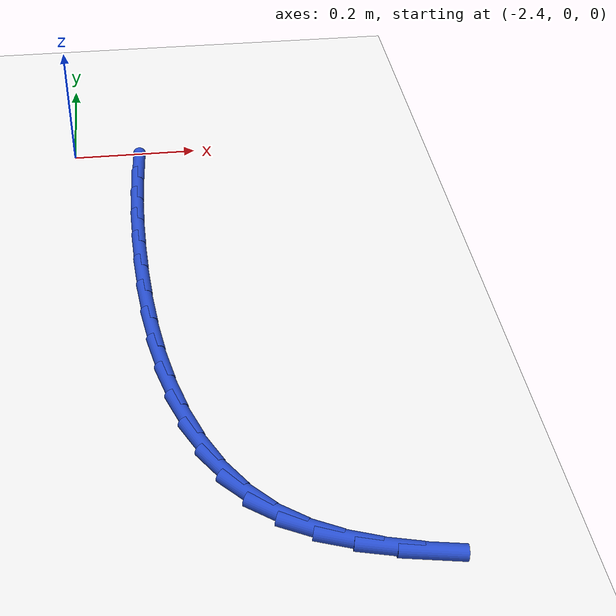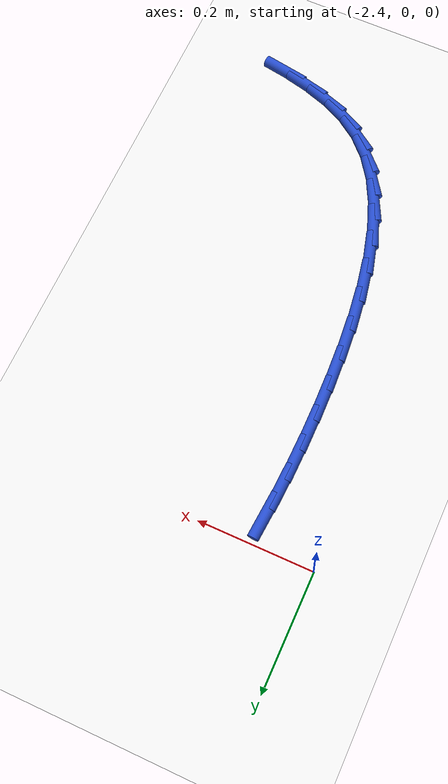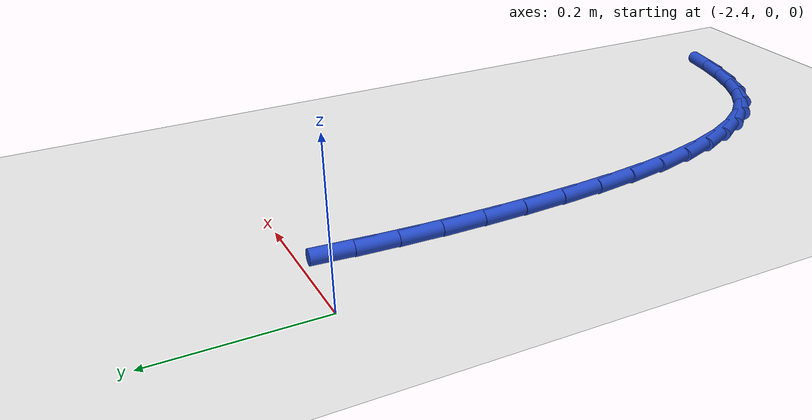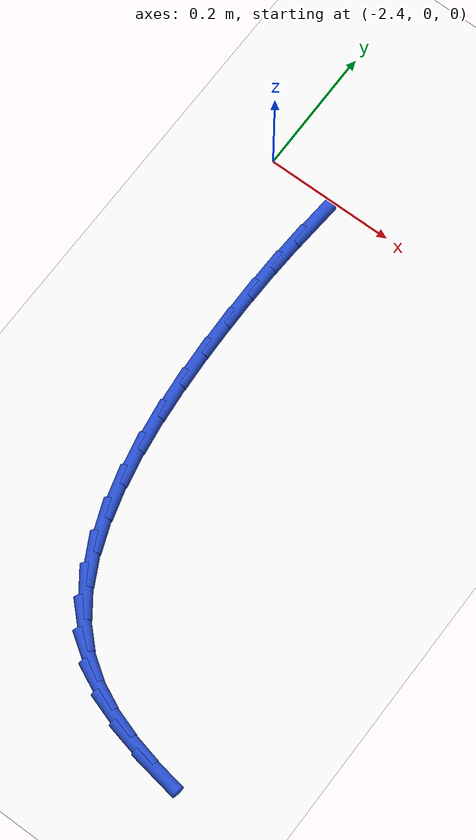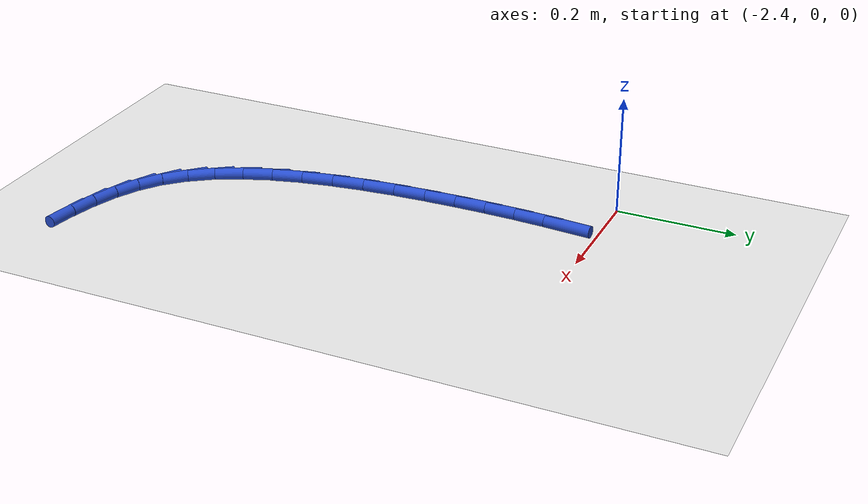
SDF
<sdf version="1.6">
 <world name="default">
  <model name="ground_plane">
   <static>1</static>
   <link name="link">
    <collision name="collision">
     <geometry><plane><normal>0 0 1</normal><size>100 100</size></plane></geometry>
     <surface><friction><ode><mu>100</mu><mu2>50</mu2></ode></friction></surface>
    </collision>
    <visual name="visual">
     <cast_shadows>0</cast_shadows>
     <geometry><plane><normal>0 0 1</normal><size>100 100</size></plane></geometry>
     <material>
      <script><uri>file://media/materials/scripts/gazebo.material</uri><name>Gazebo/WhiteGlow</name></script>
     </material>
    </visual>
   </link>
  </model>
  <model name="line">
   <link name="link_75">
    <pose>-2.2952177196326606 -0.04834455347273954 0.01 0 1.57 1.4941805088684836</pose>
    <collision name="collision">
     <geometry><cylinder><radius>0.01</radius><length>0.08</length></cylinder></geometry>
    </collision>
    <visual name="visual">
     <material>
      <script><name>Gazebo/Blue</name><uri>file://media/materials/scripts/gazebo.material</uri></script>
     </material>
     <geometry><cylinder><radius>0.01</radius><length>0.08</length></cylinder></geometry>
    </visual>
   </link>
   <link name="link_76">
    <pose>-2.2991858609061624 -0.10003588866377597 0.01 0 1.57 1.5249915904417612</pose>
    <collision name="collision">
     <geometry><cylinder><radius>0.01</radius><length>0.08</length></cylinder></geometry>
    </collision>
    <visual name="visual">
     <material>
      <script><name>Gazebo/Blue</name><uri>file://media/materials/scripts/gazebo.material</uri></script>
     </material>
     <geometry><cylinder><radius>0.01</radius><length>0.08</length></cylinder></geometry>
    </visual>
   </link>
   <link name="link_77">
    <pose>-2.301597513217818 -0.1526497810107465 0.01 0 1.57 1.5531881040737472</pose>
    <collision name="collision">
     <geometry><cylinder><radius>0.01</radius><length>0.08</length></cylinder></geometry>
    </collision>
    <visual name="visual">
     <material>
      <script><name>Gazebo/Blue</name><uri>file://media/materials/scripts/gazebo.material</uri></script>
     </material>
     <geometry><cylinder><radius>0.01</radius><length>0.08</length></cylinder></geometry>
    </visual>
   </link>
   <link name="link_78">
    <pose>-2.3025401119076916 -0.20617598211382038 0.01 0 1.57 -1.5627304790262764</pose>
    <collision name="collision">
     <geometry><cylinder><radius>0.01</radius><length>0.08</length></cylinder></geometry>
    </collision>
    <visual name="visual">
     <material>
      <script><name>Gazebo/Blue</name><uri>file://media/materials/scripts/gazebo.material</uri></script>
     </material>
     <geometry><cylinder><radius>0.01</radius><length>0.08</length></cylinder></geometry>
    </visual>
   </link>
   <link name="link_79">
    <pose>-2.3021010923158443 -0.2606042435731696 0.01 0 1.57 -1.538536192740324</pose>
    <collision name="collision">
     <geometry><cylinder><radius>0.01</radius><length>0.08</length></cylinder></geometry>
    </collision>
    <visual name="visual">
     <material>
      <script><name>Gazebo/Blue</name><uri>file://media/materials/scripts/gazebo.material</uri></script>
     </material>
     <geometry><cylinder><radius>0.01</radius><length>0.08</length></cylinder></geometry>
    </visual>
   </link>
   <link name="link_80">
    <pose>-2.3003182188799167 -0.3158506012462425 0.01 0 1.57 -1.5095007134639327</pose>
    <collision name="collision">
     <geometry><cylinder><radius>0.01</radius><length>0.08</length></cylinder></geometry>
    </collision>
    <visual name="visual">
     <material>
      <script><name>Gazebo/Blue</name><uri>file://media/materials/scripts/gazebo.material</uri></script>
     </material>
     <geometry><cylinder><radius>0.01</radius><length>0.08</length></cylinder></geometry>
    </visual>
   </link>
   <link name="link_81">
    <pose>-2.2969114985297905 -0.3713595124697224 0.01 0 1.57 -1.4723384046299697</pose>
    <collision name="collision">
     <geometry><cylinder><radius>0.01</radius><length>0.08</length></cylinder></geometry>
    </collision>
    <visual name="visual">
     <material>
      <script><name>Gazebo/Blue</name><uri>file://media/materials/scripts/gazebo.material</uri></script>
     </material>
     <geometry><cylinder><radius>0.01</radius><length>0.08</length></cylinder></geometry>
    </visual>
   </link>
   <link name="link_82">
    <pose>-2.291475767520938 -0.4263896709081828 0.01 0 1.57 -1.4255659213302603</pose>
    <collision name="collision">
     <geometry><cylinder><radius>0.01</radius><length>0.08</length></cylinder></geometry>
    </collision>
    <visual name="visual">
     <material>
      <script><name>Gazebo/Blue</name><uri>file://media/materials/scripts/gazebo.material</uri></script>
     </material>
     <geometry><cylinder><radius>0.01</radius><length>0.08</length></cylinder></geometry>
    </visual>
   </link>
   <link name="link_83">
    <pose>-2.283605559723825 -0.4801993214617437 0.01 0 1.57 -1.3670908511453073</pose>
    <collision name="collision">
     <geometry><cylinder><radius>0.01</radius><length>0.08</length></cylinder></geometry>
    </collision>
    <visual name="visual">
     <material>
      <script><name>Gazebo/Blue</name><uri>file://media/materials/scripts/gazebo.material</uri></script>
     </material>
     <geometry><cylinder><radius>0.01</radius><length>0.08</length></cylinder></geometry>
    </visual>
   </link>
   <link name="link_84">
    <pose>-2.2728954090089144 -0.5320467090305278 0.01 0 1.57 -1.2941040796726326</pose>
    <collision name="collision">
     <geometry><cylinder><radius>0.01</radius><length>0.08</length></cylinder></geometry>
    </collision>
    <visual name="visual">
     <material>
      <script><name>Gazebo/Blue</name><uri>file://media/materials/scripts/gazebo.material</uri></script>
     </material>
     <geometry><cylinder><radius>0.01</radius><length>0.08</length></cylinder></geometry>
    </visual>
   </link>
   <link name="link_85">
    <pose>-2.2589398492466737 -0.5811900785146545 0.01 0 1.57 -1.203042413620935</pose>
    <collision name="collision">
     <geometry><cylinder><radius>0.01</radius><length>0.08</length></cylinder></geometry>
    </collision>
    <visual name="visual">
     <material>
      <script><name>Gazebo/Blue</name><uri>file://media/materials/scripts/gazebo.material</uri></script>
     </material>
     <geometry><cylinder><radius>0.01</radius><length>0.08</length></cylinder></geometry>
    </visual>
   </link>
   <link name="link_86">
    <pose>-2.241333414307567 -0.6268876748142465 0.01 0 1.57 -1.0898077549261511</pose>
    <collision name="collision">
     <geometry><cylinder><radius>0.01</radius><length>0.08</length></cylinder></geometry>
    </collision>
    <visual name="visual">
     <material>
      <script><name>Gazebo/Blue</name><uri>file://media/materials/scripts/gazebo.material</uri></script>
     </material>
     <geometry><cylinder><radius>0.01</radius><length>0.08</length></cylinder></geometry>
    </visual>
   </link>
   <link name="link_87">
    <pose>-2.2196706380620608 -0.6683977428294241 0.01 0 1.57 -0.9506291742447966</pose>
    <collision name="collision">
     <geometry><cylinder><radius>0.01</radius><length>0.08</length></cylinder></geometry>
    </collision>
    <visual name="visual">
     <material>
      <script><name>Gazebo/Blue</name><uri>file://media/materials/scripts/gazebo.material</uri></script>
     </material>
     <geometry><cylinder><radius>0.01</radius><length>0.08</length></cylinder></geometry>
    </visual>
   </link>
   <link name="link_88">
    <pose>-2.1935460543806196 -0.7049785274603075 0.01 0 1.57 -0.7840716864156042</pose>
    <collision name="collision">
     <geometry><cylinder><radius>0.01</radius><length>0.08</length></cylinder></geometry>
    </collision>
    <visual name="visual">
     <material>
      <script><name>Gazebo/Blue</name><uri>file://media/materials/scripts/gazebo.material</uri></script>
     </material>
     <geometry><cylinder><radius>0.01</radius><length>0.08</length></cylinder></geometry>
    </visual>
   </link>
   <link name="link_89">
    <pose>-2.162554197133708 -0.7358882736070188 0.01 0 1.57 -0.600881425776098</pose>
    <collision name="collision">
     <geometry><cylinder><radius>0.01</radius><length>0.08</length></cylinder></geometry>
    </collision>
    <visual name="visual">
     <material>
      <script><name>Gazebo/Blue</name><uri>file://media/materials/scripts/gazebo.material</uri></script>
     </material>
     <geometry><cylinder><radius>0.01</radius><length>0.08</length></cylinder></geometry>
    </visual>
   </link>
   <link name="link_90">
    <pose>-2.1264546688693073 -0.7606320295995298 0.01 0 1.57 -0.44084631031539</pose>
    <collision name="collision">
     <geometry><cylinder><radius>0.01</radius><length>0.08</length></cylinder></geometry>
    </collision>
    <visual name="visual">
     <material>
      <script><name>Gazebo/Blue</name><uri>file://media/materials/scripts/gazebo.material</uri></script>
     </material>
     <geometry><cylinder><radius>0.01</radius><length>0.08</length></cylinder></geometry>
    </visual>
   </link>
   <link name="link_91">
    <pose>-2.0857558256170896 -0.7798343470568503 0.01 0 1.57 -0.31656285725724476</pose>
    <collision name="collision">
     <geometry><cylinder><radius>0.01</radius><length>0.08</length></cylinder></geometry>
    </collision>
    <visual name="visual">
     <material>
      <script><name>Gazebo/Blue</name><uri>file://media/materials/scripts/gazebo.material</uri></script>
     </material>
     <geometry><cylinder><radius>0.01</radius><length>0.08</length></cylinder></geometry>
    </visual>
   </link>
   <link name="link_92">
    <pose>-2.041178217501434 -0.7944370408798979 0.01 0 1.57 -0.22538523885710032</pose>
    <collision name="collision">
     <geometry><cylinder><radius>0.01</radius><length>0.08</length></cylinder></geometry>
    </collision>
    <visual name="visual">
     <material>
      <script><name>Gazebo/Blue</name><uri>file://media/materials/scripts/gazebo.material</uri></script>
     </material>
     <geometry><cylinder><radius>0.01</radius><length>0.08</length></cylinder></geometry>
    </visual>
   </link>
   <link name="link_93">
    <pose>-1.9934424084275808 -0.8053819465741193 0.01 0 1.57 -0.1625628240293469</pose>
    <collision name="collision">
     <geometry><cylinder><radius>0.01</radius><length>0.08</length></cylinder></geometry>
    </collision>
    <visual name="visual">
     <material>
      <script><name>Gazebo/Blue</name><uri>file://media/materials/scripts/gazebo.material</uri></script>
     </material>
     <geometry><cylinder><radius>0.01</radius><length>0.08</length></cylinder></geometry>
    </visual>
   </link>
  </model>
 </world>
</sdf>
